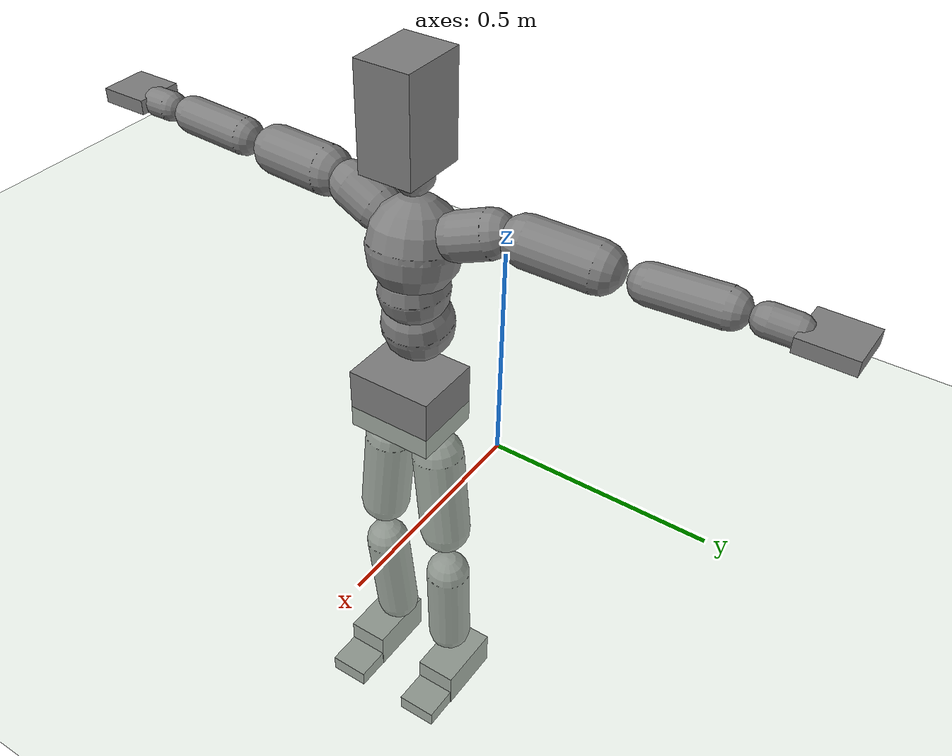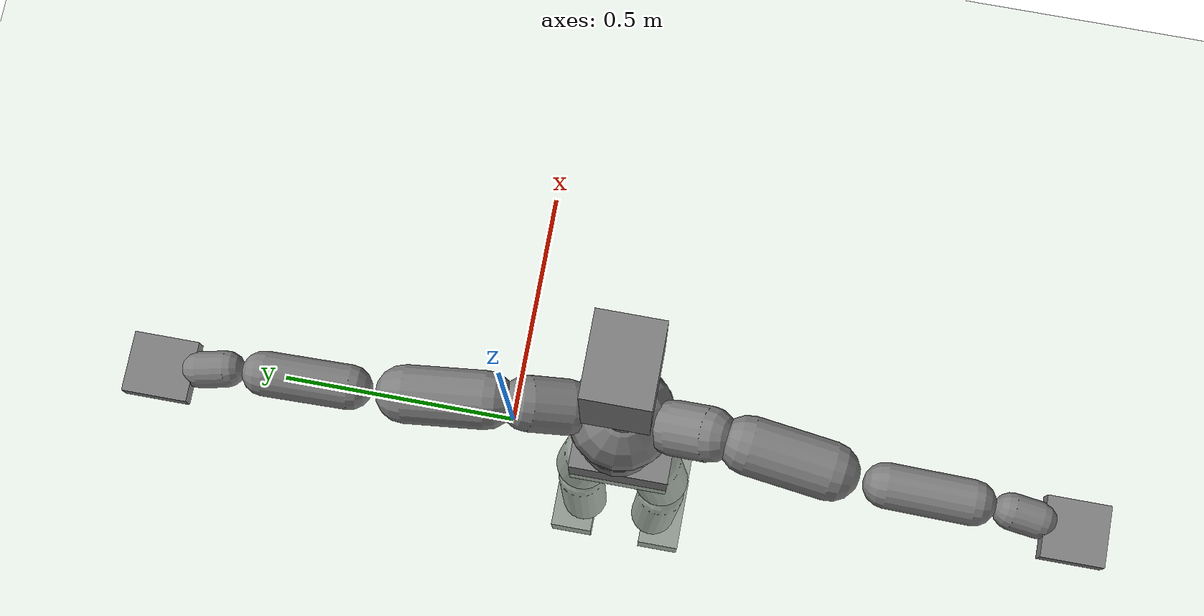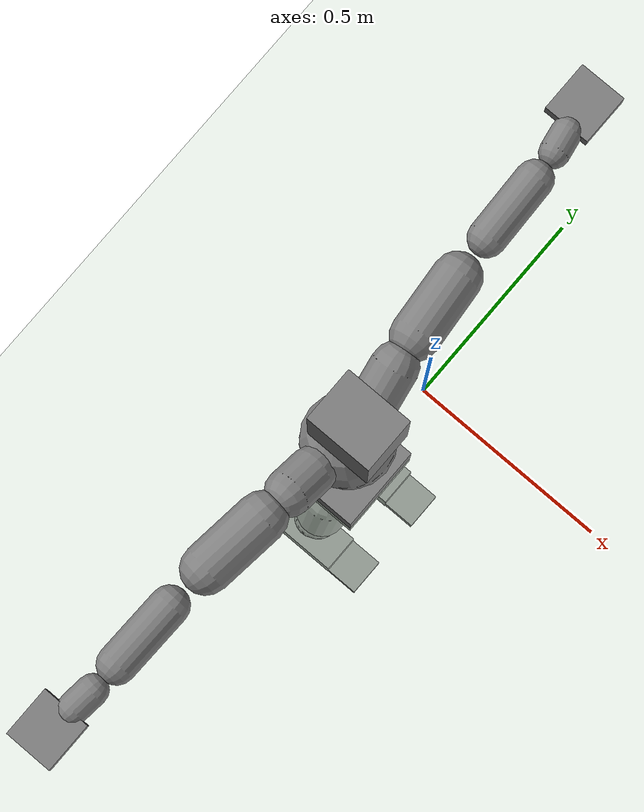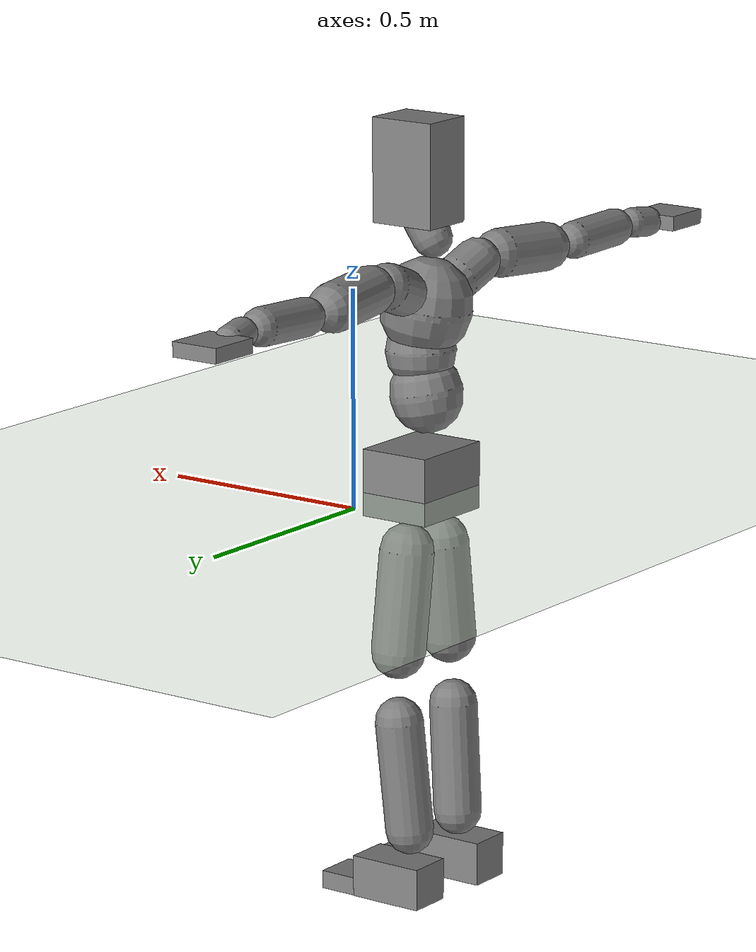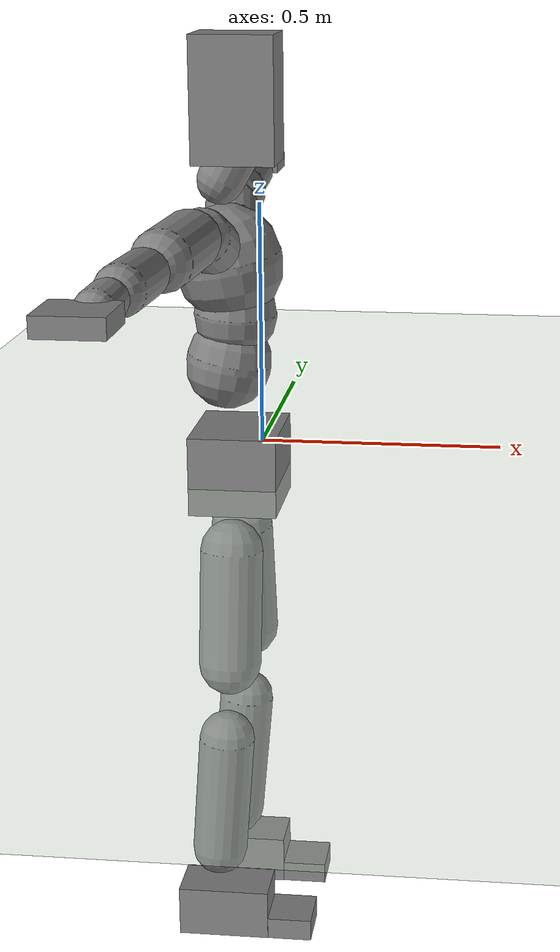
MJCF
<mujoco model="humanoid">
  <compiler coordinate="local"/>
  <statistic extent="2" center="0 0 1"/>
  <option timestep="0.00555"/>
  <default>
    <motor ctrlrange="-1 1" ctrllimited="true"/>
    <geom type="capsule" condim="1" friction="1.0 0.05 0.05" solimp=".9 .99 .003" solref=".015 1"/>
    <joint type="hinge" damping="0.1" stiffness="5" armature=".007" limited="true" solimplimit="0 .99 .01"/>
    <site size=".04" group="3"/>
    <default class="force-torque">
      <site type="box" size=".01 .01 .02" rgba="1 0 0 1"/>
    </default>
    <default class="touch">
      <site type="capsule" rgba="0 0 1 .3"/>
    </default>
  </default>
  <asset>
    <texture type="skybox" builtin="gradient" rgb1=".4 .5 .6" rgb2="0 0 0" width="100" height="100"/>
    <texture builtin="flat" height="1278" mark="cross" markrgb="1 1 1" name="texgeom" random="0.01" rgb1="0.8 0.6 0.4" rgb2="0.8 0.6 0.4" type="cube" width="127"/>
    <texture builtin="checker" height="100" name="texplane" rgb1="0 0 0" rgb2="0.8 0.8 0.8" type="2d" width="100"/>
    <material name="MatPlane" reflectance="0.5" shininess="1" specular="1" texrepeat="60 60" texture="texplane"/>
    <material name="geom" texture="texgeom" texuniform="true"/>
  </asset>
  <worldbody>
    <light cutoff="100" diffuse="1 1 1" dir="-0 0 -1.3" directional="true" exponent="1" pos="0 0 1.3" specular=".1 .1 .1"/>
    <geom conaffinity="1" condim="3" name="floor" pos="0 0 0" rgba="0.8 0.9 0.8 1" size="100 100 .2" type="plane" material="MatPlane"/>
    <body name="Pelvis" pos="-0.0024 -0.2414 0.0298">
      <freejoint name="Pelvis"/>
      <geom density="3178.558757" type="box" pos="-0.0053 -0.0025 -0.0089" size="0.0858 0.1054 0.0778" quat="1.0000 0.0000 0.0000 0.0000"/>
      <body name="L_Hip" pos="-0.0173 0.0589 -0.0825">
        <joint name="L_Hip_x" type="hinge" pos="0 0 0" axis="1 0 0" stiffness="800" damping="80" armature="0.02" range="-90.0000 90.0000"/>
        <joint name="L_Hip_y" type="hinge" pos="0 0 0" axis="0 1 0" stiffness="800" damping="80" armature="0.02" range="-90.0000 90.0000"/>
        <joint name="L_Hip_z" type="hinge" pos="0 0 0" axis="0 0 1" stiffness="800" damping="80" armature="0.02" range="-90.0000 90.0000"/>
        <geom type="capsule" contype="1" conaffinity="1" density="2040.816327" fromto="0.0016 0.0087 -0.0774 0.0065 0.0347 -0.3097" size="0.0624"/>
        <body name="L_Knee" pos="0.0082 0.0434 -0.3872">
          <joint name="L_Knee_x" type="hinge" pos="0 0 0" axis="1 0 0" stiffness="800" damping="80" armature="0.02" range="-5.6250 5.6250"/>
          <joint name="L_Knee_y" type="hinge" pos="0 0 0" axis="0 1 0" stiffness="800" damping="80" armature="0.02" range="0.0000 180.0000"/>
          <joint name="L_Knee_z" type="hinge" pos="0 0 0" axis="0 0 1" stiffness="800" damping="80" armature="0.02" range="-5.6250 5.6250"/>
          <geom type="capsule" contype="1" conaffinity="1" density="1234.567901" fromto="-0.0075 -0.0030 -0.0859 -0.0301 -0.0120 -0.3434" size="0.0555"/>
          <body name="L_Ankle" pos="-0.0376 -0.015 -0.4293">
            <joint name="L_Ankle_x" type="hinge" pos="0 0 0" axis="1 0 0" stiffness="800" damping="80" armature="0.02" range="-45.0000 45.0000"/>
            <joint name="L_Ankle_y" type="hinge" pos="0 0 0" axis="0 1 0" stiffness="800" damping="80" armature="0.02" range="-90.0000 90.0000"/>
            <joint name="L_Ankle_z" type="hinge" pos="0 0 0" axis="0 0 1" stiffness="800" damping="80" armature="0.02" range="-45.0000 45.0000"/>
            <geom density="451.290125" type="box" pos="0.0216 0.0281 -0.0244" size="0.0894 0.0521 0.0484" quat="1.0000 0.0000 0.0000 0.0000"/>
            <body name="L_Toe" pos="0.1227 0.0408 -0.0605">
              <joint name="L_Toe_x" type="hinge" pos="0 0 0" axis="1 0 0" stiffness="500" damping="50" armature="0.02" range="-180.0000 180.0000"/>
              <joint name="L_Toe_y" type="hinge" pos="0 0 0" axis="0 1 0" stiffness="500" damping="50" armature="0.02" range="-180.0000 180.0000"/>
              <joint name="L_Toe_z" type="hinge" pos="0 0 0" axis="0 0 1" stiffness="500" damping="50" armature="0.02" range="-180.0000 180.0000"/>
              <geom density="430.429078" type="box" pos="0.0258 -0.0127 0.0086" size="0.0521 0.0504 0.0209" quat="1.0000 0.0000 0.0000 0.0000"/>
            </body>
          </body>
        </body>
      </body>
      <body name="R_Hip" pos="-0.0131 -0.0606 -0.0908">
        <joint name="R_Hip_x" type="hinge" pos="0 0 0" axis="1 0 0" stiffness="800" damping="80" armature="0.02" range="-90.0000 90.0000"/>
        <joint name="R_Hip_y" type="hinge" pos="0 0 0" axis="0 1 0" stiffness="800" damping="80" armature="0.02" range="-90.0000 90.0000"/>
        <joint name="R_Hip_z" type="hinge" pos="0 0 0" axis="0 0 1" stiffness="800" damping="80" armature="0.02" range="-90.0000 90.0000"/>
        <geom type="capsule" contype="1" conaffinity="1" density="2040.816327" fromto="-0.0010 -0.0086 -0.0769 -0.0039 -0.0345 -0.3077" size="0.0619"/>
        <body name="R_Knee" pos="-0.0049 -0.0432 -0.3846">
          <joint name="R_Knee_x" type="hinge" pos="0 0 0" axis="1 0 0" stiffness="800" damping="80" armature="0.02" range="-5.6250 5.6250"/>
          <joint name="R_Knee_y" type="hinge" pos="0 0 0" axis="0 1 0" stiffness="800" damping="80" armature="0.02" range="0.0000 180.0000"/>
          <joint name="R_Knee_z" type="hinge" pos="0 0 0" axis="0 0 1" stiffness="800" damping="80" armature="0.02" range="-5.6250 5.6250"/>
          <geom type="capsule" contype="1" conaffinity="1" density="1234.567901" fromto="-0.0070 0.0038 -0.0845 -0.0278 0.0154 -0.3379" size="0.0556"/>
          <body name="R_Ankle" pos="-0.0348 0.0192 -0.4224">
            <joint name="R_Ankle_x" type="hinge" pos="0 0 0" axis="1 0 0" stiffness="800" damping="80" armature="0.02" range="-45.0000 45.0000"/>
            <joint name="R_Ankle_y" type="hinge" pos="0 0 0" axis="0 1 0" stiffness="800" damping="80" armature="0.02" range="-90.0000 90.0000"/>
            <joint name="R_Ankle_z" type="hinge" pos="0 0 0" axis="0 0 1" stiffness="800" damping="80" armature="0.02" range="-45.0000 45.0000"/>
            <geom density="437.372189" type="box" pos="0.0248 -0.0305 -0.0276" size="0.0913 0.0514 0.0505" quat="1.0000 0.0000 0.0000 0.0000"/>
            <body name="R_Toe" pos="0.131 -0.0352 -0.0622">
              <joint name="R_Toe_x" type="hinge" pos="0 0 0" axis="1 0 0" stiffness="500" damping="50" armature="0.02" range="-180.0000 180.0000"/>
              <joint name="R_Toe_y" type="hinge" pos="0 0 0" axis="0 1 0" stiffness="500" damping="50" armature="0.02" range="-180.0000 180.0000"/>
              <joint name="R_Toe_z" type="hinge" pos="0 0 0" axis="0 0 1" stiffness="500" damping="50" armature="0.02" range="-180.0000 180.0000"/>
              <geom density="432.609168" type="box" pos="0.0216 0.0047 0.0060" size="0.0524 0.0508 0.0218" quat="1.0000 0.0000 0.0000 0.0000"/>
            </body>
          </body>
        </body>
      </body>
      <body name="Torso" pos="-0.0393 0.0045 0.125">
        <joint name="Torso_x" type="hinge" pos="0 0 0" axis="1 0 0" stiffness="1000" damping="100" armature="0.02" range="-60.0000 60.0000"/>
        <joint name="Torso_y" type="hinge" pos="0 0 0" axis="0 1 0" stiffness="1000" damping="100" armature="0.02" range="-60.0000 60.0000"/>
        <joint name="Torso_z" type="hinge" pos="0 0 0" axis="0 0 1" stiffness="1000" damping="100" armature="0.02" range="-60.0000 60.0000"/>
        <geom type="capsule" contype="1" conaffinity="1" density="2040.816327" fromto="0.0119 0.0020 0.0621 0.0146 0.0025 0.0760" size="0.0832"/>
        <body name="Spine" pos="0.0265 0.0045 0.1381">
          <joint name="Spine_x" type="hinge" pos="0 0 0" axis="1 0 0" stiffness="1000" damping="100" armature="0.02" range="-60.0000 60.0000"/>
          <joint name="Spine_y" type="hinge" pos="0 0 0" axis="0 1 0" stiffness="1000" damping="100" armature="0.02" range="-60.0000 60.0000"/>
          <joint name="Spine_z" type="hinge" pos="0 0 0" axis="0 0 1" stiffness="1000" damping="100" armature="0.02" range="-60.0000 60.0000"/>
          <geom type="capsule" contype="1" conaffinity="1" density="2040.816327" fromto="0.0013 -0.0010 0.0253 0.0016 -0.0012 0.0309" size="0.081"/>
          <body name="Chest" pos="0.0029 -0.0022 0.0561">
            <joint name="Chest_x" type="hinge" pos="0 0 0" axis="1 0 0" stiffness="1000" damping="100" armature="0.02" range="-60.0000 60.0000"/>
            <joint name="Chest_y" type="hinge" pos="0 0 0" axis="0 1 0" stiffness="1000" damping="100" armature="0.02" range="-60.0000 60.0000"/>
            <joint name="Chest_z" type="hinge" pos="0 0 0" axis="0 0 1" stiffness="1000" damping="100" armature="0.02" range="-60.0000 60.0000"/>
            <geom type="capsule" contype="1" conaffinity="1" density="2040.816327" fromto="-0.0115 -0.0037 0.0660 -0.0141 -0.0045 0.0807" size="0.1052"/>
            <body name="Neck" pos="-0.034 -0.0134 0.2126">
              <joint name="Neck_x" type="hinge" pos="0 0 0" axis="1 0 0" stiffness="500" damping="50" armature="0.02" range="-5.6250 5.6250"/>
              <joint name="Neck_y" type="hinge" pos="0 0 0" axis="0 1 0" stiffness="500" damping="50" armature="0.02" range="-90.0000 90.0000"/>
              <joint name="Neck_z" type="hinge" pos="0 0 0" axis="0 0 1" stiffness="500" damping="50" armature="0.02" range="-90.0000 90.0000"/>
              <geom type="capsule" contype="1" conaffinity="1" density="1000" fromto="0.0100 0.0020 0.0177 0.0402 0.0081 0.0708" size="0.0457"/>
              <body name="Head" pos="0.0502 0.0102 0.0885">
                <joint name="Head_x" type="hinge" pos="0 0 0" axis="1 0 0" stiffness="500" damping="50" armature="0.02" range="-5.6250 5.6250"/>
                <joint name="Head_y" type="hinge" pos="0 0 0" axis="0 1 0" stiffness="500" damping="50" armature="0.02" range="-90.0000 90.0000"/>
                <joint name="Head_z" type="hinge" pos="0 0 0" axis="0 0 1" stiffness="500" damping="50" armature="0.02" range="-90.0000 90.0000"/>
                <geom density="1015.589606" type="box" pos="-0.0085 0.0013 0.0808" size="0.0792 0.0635 0.1191" quat="1.0000 0.0000 0.0000 0.0000"/>
              </body>
            </body>
            <body name="L_Thorax" pos="-0.0189 0.0722 0.1146">
              <joint name="L_Thorax_x" type="hinge" pos="0 0 0" axis="1 0 0" stiffness="500" damping="50" armature="0.02" range="-5.6250 5.6250"/>
              <joint name="L_Thorax_y" type="hinge" pos="0 0 0" axis="0 1 0" stiffness="500" damping="50" armature="0.02" range="-5.6250 5.6250"/>
              <joint name="L_Thorax_z" type="hinge" pos="0 0 0" axis="0 0 1" stiffness="500" damping="50" armature="0.02" range="-5.6250 5.6250"/>
              <geom type="capsule" contype="1" conaffinity="1" density="1000" fromto="-0.0039 0.0247 0.0091 -0.0154 0.0990 0.0363" size="0.0535"/>
              <body name="L_Shoulder" pos="-0.0193 0.1237 0.0454">
                <joint name="L_Shoulder_x" type="hinge" pos="0 0 0" axis="1 0 0" stiffness="500" damping="50" armature="0.02" range="-720.0000 720.0000"/>
                <joint name="L_Shoulder_y" type="hinge" pos="0 0 0" axis="0 1 0" stiffness="500" damping="50" armature="0.02" range="-720.0000 720.0000"/>
                <joint name="L_Shoulder_z" type="hinge" pos="0 0 0" axis="0 0 1" stiffness="500" damping="50" armature="0.02" range="-720.0000 720.0000"/>
                <geom type="capsule" contype="1" conaffinity="1" density="1000" fromto="-0.0047 0.0512 -0.0032 -0.0189 0.2050 -0.0126" size="0.0558"/>
                <body name="L_Elbow" pos="-0.0236 0.2562 -0.0158">
                  <joint name="L_Elbow_x" type="hinge" pos="0 0 0" axis="1 0 0" stiffness="500" damping="50" armature="0.02" range="-5.6250 5.6250"/>
                  <joint name="L_Elbow_y" type="hinge" pos="0 0 0" axis="0 1 0" stiffness="500" damping="50" armature="0.02" range="-5.6250 5.6250"/>
                  <joint name="L_Elbow_z" type="hinge" pos="0 0 0" axis="0 0 1" stiffness="500" damping="50" armature="0.02" range="-180.0000 0.0000"/>
                  <geom type="capsule" contype="1" conaffinity="1" density="1000" fromto="-0.0014 0.0535 0.0026 -0.0057 0.2140 0.0104" size="0.0431"/>
                  <body name="L_Wrist" pos="-0.0071 0.2675 0.013">
                    <joint name="L_Wrist_x" type="hinge" pos="0 0 0" axis="1 0 0" stiffness="300" damping="30" armature="0.02" range="-180.0000 180.0000"/>
                    <joint name="L_Wrist_y" type="hinge" pos="0 0 0" axis="0 1 0" stiffness="300" damping="30" armature="0.02" range="-180.0000 180.0000"/>
                    <joint name="L_Wrist_z" type="hinge" pos="0 0 0" axis="0 0 1" stiffness="300" damping="30" armature="0.02" range="-180.0000 180.0000"/>
                    <geom type="capsule" contype="1" conaffinity="1" density="1000" fromto="-0.0031 0.0175 -0.0021 -0.0126 0.0699 -0.0086" size="0.0344"/>
                    <body name="L_Hand" pos="-0.0157 0.0874 -0.0107">
                      <joint name="L_Hand_x" type="hinge" pos="0 0 0" axis="1 0 0" stiffness="300" damping="30" armature="0.02" range="-180.0000 180.0000"/>
                      <joint name="L_Hand_y" type="hinge" pos="0 0 0" axis="0 1 0" stiffness="300" damping="30" armature="0.02" range="-180.0000 180.0000"/>
                      <joint name="L_Hand_z" type="hinge" pos="0 0 0" axis="0 0 1" stiffness="300" damping="30" armature="0.02" range="-180.0000 180.0000"/>
                      <geom density="411.455315" type="box" pos="-0.0063 0.0521 0.0026" size="0.0573 0.0615 0.0167" quat="1.0000 0.0000 0.0000 0.0000"/>
                    </body>
                  </body>
                </body>
              </body>
            </body>
            <body name="R_Thorax" pos="-0.0238 -0.0832 0.113">
              <joint name="R_Thorax_x" type="hinge" pos="0 0 0" axis="1 0 0" stiffness="500" damping="50" armature="0.02" range="-5.6250 5.6250"/>
              <joint name="R_Thorax_y" type="hinge" pos="0 0 0" axis="0 1 0" stiffness="500" damping="50" armature="0.02" range="-5.6250 5.6250"/>
              <joint name="R_Thorax_z" type="hinge" pos="0 0 0" axis="0 0 1" stiffness="500" damping="50" armature="0.02" range="-5.6250 5.6250"/>
              <geom type="capsule" contype="1" conaffinity="1" density="1000" fromto="-0.0017 -0.0228 0.0094 -0.0069 -0.0910 0.0376" size="0.0535"/>
              <body name="R_Shoulder" pos="-0.0087 -0.1138 0.047">
                <joint name="R_Shoulder_x" type="hinge" pos="0 0 0" axis="1 0 0" stiffness="500" damping="50" armature="0.02" range="-720.0000 720.0000"/>
                <joint name="R_Shoulder_y" type="hinge" pos="0 0 0" axis="0 1 0" stiffness="500" damping="50" armature="0.02" range="-720.0000 720.0000"/>
                <joint name="R_Shoulder_z" type="hinge" pos="0 0 0" axis="0 0 1" stiffness="500" damping="50" armature="0.02" range="-720.0000 720.0000"/>
                <geom type="capsule" contype="1" conaffinity="1" density="1000" fromto="-0.0064 -0.0522 -0.0029 -0.0256 -0.2090 -0.0115" size="0.0565"/>
                <body name="R_Elbow" pos="-0.032 -0.2612 -0.0143">
                  <joint name="R_Elbow_x" type="hinge" pos="0 0 0" axis="1 0 0" stiffness="500" damping="50" armature="0.02" range="-5.6250 5.6250"/>
                  <joint name="R_Elbow_y" type="hinge" pos="0 0 0" axis="0 1 0" stiffness="500" damping="50" armature="0.02" range="-5.6250 5.6250"/>
                  <joint name="R_Elbow_z" type="hinge" pos="0 0 0" axis="0 0 1" stiffness="500" damping="50" armature="0.02" range="0.0000 180.0000"/>
                  <geom type="capsule" contype="1" conaffinity="1" density="1000" fromto="-0.0012 -0.0541 0.0013 -0.0047 -0.2164 0.0053" size="0.0437"/>
                  <body name="R_Wrist" pos="-0.0059 -0.2705 0.0067">
                    <joint name="R_Wrist_x" type="hinge" pos="0 0 0" axis="1 0 0" stiffness="300" damping="30" armature="0.02" range="-180.0000 180.0000"/>
                    <joint name="R_Wrist_y" type="hinge" pos="0 0 0" axis="0 1 0" stiffness="300" damping="30" armature="0.02" range="-180.0000 180.0000"/>
                    <joint name="R_Wrist_z" type="hinge" pos="0 0 0" axis="0 0 1" stiffness="300" damping="30" armature="0.02" range="-180.0000 180.0000"/>
                    <geom type="capsule" contype="1" conaffinity="1" density="1000" fromto="-0.0020 -0.0179 -0.0017 -0.0081 -0.0715 -0.0070" size="0.0351"/>
                    <body name="R_Hand" pos="-0.0102 -0.0894 -0.0087">
                      <joint name="R_Hand_x" type="hinge" pos="0 0 0" axis="1 0 0" stiffness="300" damping="30" armature="0.02" range="-180.0000 180.0000"/>
                      <joint name="R_Hand_y" type="hinge" pos="0 0 0" axis="0 1 0" stiffness="300" damping="30" armature="0.02" range="-180.0000 180.0000"/>
                      <joint name="R_Hand_z" type="hinge" pos="0 0 0" axis="0 0 1" stiffness="300" damping="30" armature="0.02" range="-180.0000 180.0000"/>
                      <geom density="414.838395" type="box" pos="-0.0090 -0.0491 0.0021" size="0.0582 0.0598 0.0174" quat="1.0000 0.0000 0.0000 0.0000"/>
                    </body>
                  </body>
                </body>
              </body>
            </body>
          </body>
        </body>
      </body>
    </body>
  </worldbody>
  <actuator>
    <motor name="L_Hip_x" joint="L_Hip_x" gear="500"/>
    <motor name="L_Hip_y" joint="L_Hip_y" gear="500"/>
    <motor name="L_Hip_z" joint="L_Hip_z" gear="500"/>
    <motor name="L_Knee_x" joint="L_Knee_x" gear="500"/>
    <motor name="L_Knee_y" joint="L_Knee_y" gear="500"/>
    <motor name="L_Knee_z" joint="L_Knee_z" gear="500"/>
    <motor name="L_Ankle_x" joint="L_Ankle_x" gear="500"/>
    <motor name="L_Ankle_y" joint="L_Ankle_y" gear="500"/>
    <motor name="L_Ankle_z" joint="L_Ankle_z" gear="500"/>
    <motor name="L_Toe_x" joint="L_Toe_x" gear="500"/>
    <motor name="L_Toe_y" joint="L_Toe_y" gear="500"/>
    <motor name="L_Toe_z" joint="L_Toe_z" gear="500"/>
    <motor name="R_Hip_x" joint="R_Hip_x" gear="500"/>
    <motor name="R_Hip_y" joint="R_Hip_y" gear="500"/>
    <motor name="R_Hip_z" joint="R_Hip_z" gear="500"/>
    <motor name="R_Knee_x" joint="R_Knee_x" gear="500"/>
    <motor name="R_Knee_y" joint="R_Knee_y" gear="500"/>
    <motor name="R_Knee_z" joint="R_Knee_z" gear="500"/>
    <motor name="R_Ankle_x" joint="R_Ankle_x" gear="500"/>
    <motor name="R_Ankle_y" joint="R_Ankle_y" gear="500"/>
    <motor name="R_Ankle_z" joint="R_Ankle_z" gear="500"/>
    <motor name="R_Toe_x" joint="R_Toe_x" gear="500"/>
    <motor name="R_Toe_y" joint="R_Toe_y" gear="500"/>
    <motor name="R_Toe_z" joint="R_Toe_z" gear="500"/>
    <motor name="Torso_x" joint="Torso_x" gear="500"/>
    <motor name="Torso_y" joint="Torso_y" gear="500"/>
    <motor name="Torso_z" joint="Torso_z" gear="500"/>
    <motor name="Spine_x" joint="Spine_x" gear="500"/>
    <motor name="Spine_y" joint="Spine_y" gear="500"/>
    <motor name="Spine_z" joint="Spine_z" gear="500"/>
    <motor name="Chest_x" joint="Chest_x" gear="500"/>
    <motor name="Chest_y" joint="Chest_y" gear="500"/>
    <motor name="Chest_z" joint="Chest_z" gear="500"/>
    <motor name="Neck_x" joint="Neck_x" gear="500"/>
    <motor name="Neck_y" joint="Neck_y" gear="500"/>
    <motor name="Neck_z" joint="Neck_z" gear="500"/>
    <motor name="Head_x" joint="Head_x" gear="500"/>
    <motor name="Head_y" joint="Head_y" gear="500"/>
    <motor name="Head_z" joint="Head_z" gear="500"/>
    <motor name="L_Thorax_x" joint="L_Thorax_x" gear="500"/>
    <motor name="L_Thorax_y" joint="L_Thorax_y" gear="500"/>
    <motor name="L_Thorax_z" joint="L_Thorax_z" gear="500"/>
    <motor name="L_Shoulder_x" joint="L_Shoulder_x" gear="500"/>
    <motor name="L_Shoulder_y" joint="L_Shoulder_y" gear="500"/>
    <motor name="L_Shoulder_z" joint="L_Shoulder_z" gear="500"/>
    <motor name="L_Elbow_x" joint="L_Elbow_x" gear="500"/>
    <motor name="L_Elbow_y" joint="L_Elbow_y" gear="500"/>
    <motor name="L_Elbow_z" joint="L_Elbow_z" gear="500"/>
    <motor name="L_Wrist_x" joint="L_Wrist_x" gear="500"/>
    <motor name="L_Wrist_y" joint="L_Wrist_y" gear="500"/>
    <motor name="L_Wrist_z" joint="L_Wrist_z" gear="500"/>
    <motor name="L_Hand_x" joint="L_Hand_x" gear="500"/>
    <motor name="L_Hand_y" joint="L_Hand_y" gear="500"/>
    <motor name="L_Hand_z" joint="L_Hand_z" gear="500"/>
    <motor name="R_Thorax_x" joint="R_Thorax_x" gear="500"/>
    <motor name="R_Thorax_y" joint="R_Thorax_y" gear="500"/>
    <motor name="R_Thorax_z" joint="R_Thorax_z" gear="500"/>
    <motor name="R_Shoulder_x" joint="R_Shoulder_x" gear="500"/>
    <motor name="R_Shoulder_y" joint="R_Shoulder_y" gear="500"/>
    <motor name="R_Shoulder_z" joint="R_Shoulder_z" gear="500"/>
    <motor name="R_Elbow_x" joint="R_Elbow_x" gear="500"/>
    <motor name="R_Elbow_y" joint="R_Elbow_y" gear="500"/>
    <motor name="R_Elbow_z" joint="R_Elbow_z" gear="500"/>
    <motor name="R_Wrist_x" joint="R_Wrist_x" gear="500"/>
    <motor name="R_Wrist_y" joint="R_Wrist_y" gear="500"/>
    <motor name="R_Wrist_z" joint="R_Wrist_z" gear="500"/>
    <motor name="R_Hand_x" joint="R_Hand_x" gear="500"/>
    <motor name="R_Hand_y" joint="R_Hand_y" gear="500"/>
    <motor name="R_Hand_z" joint="R_Hand_z" gear="500"/>
  </actuator>
  <contact/>
  <size njmax="700" nconmax="700"/>
</mujoco>
